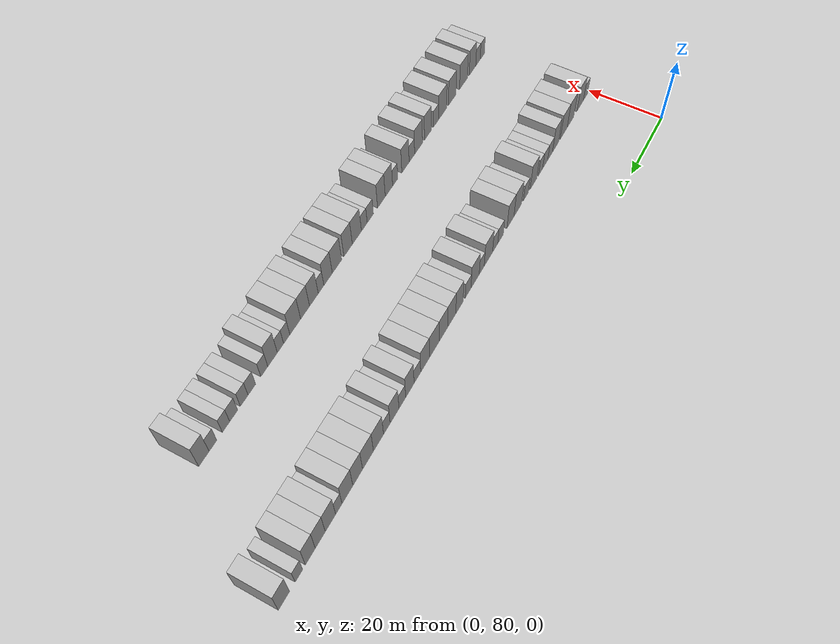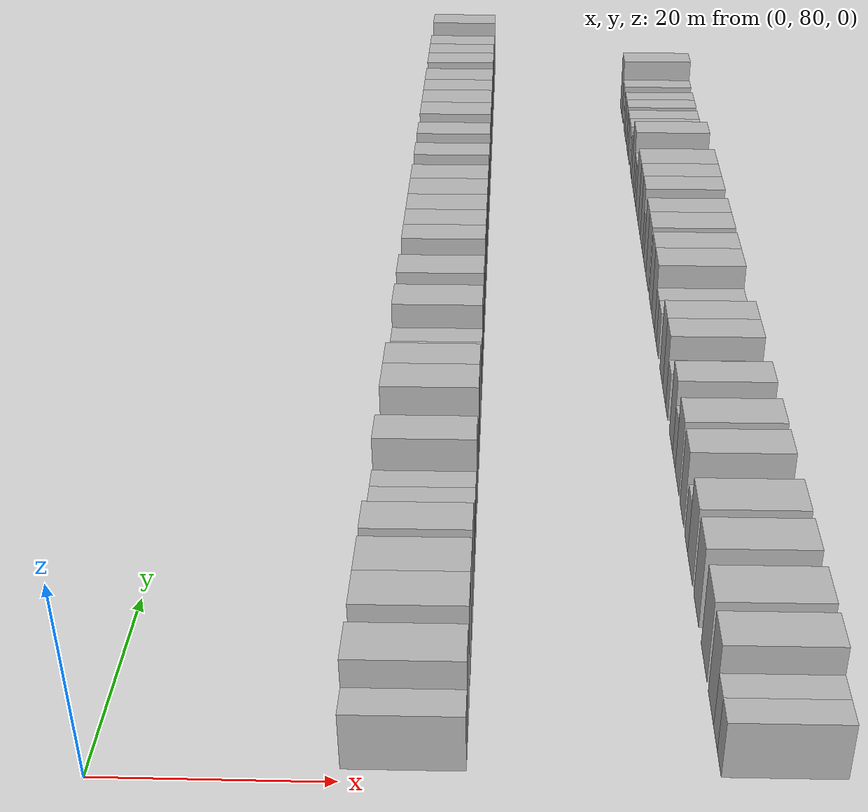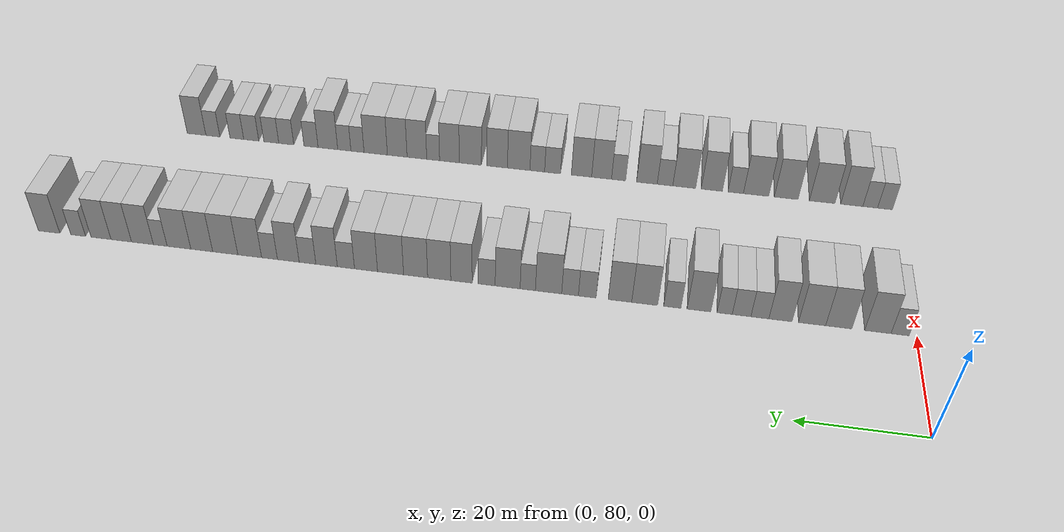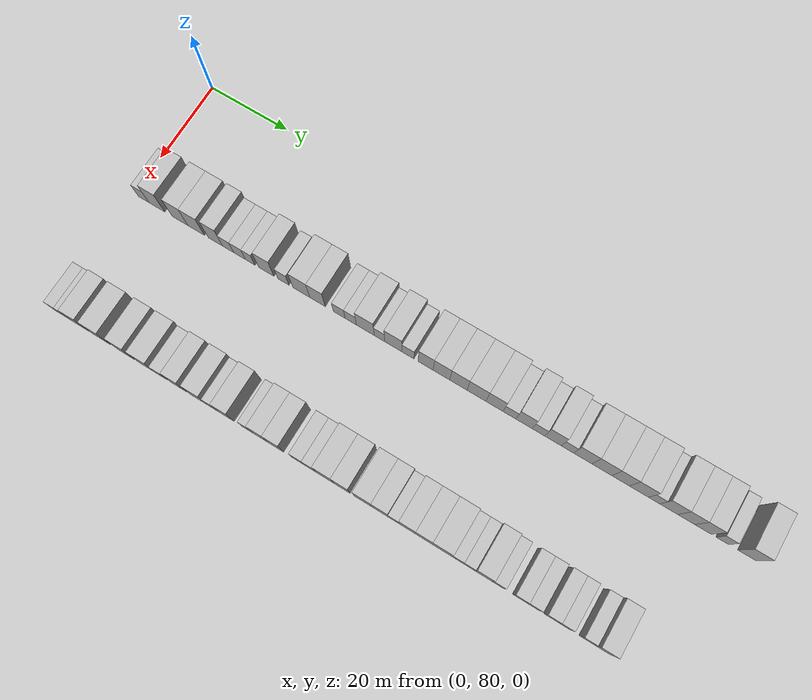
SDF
<sdf version="1.6">
 <world name="default">
  <model name="building_128">
   <static>1</static>
   <pose>25.0000 82.6388 0 0.000000 0.000000 0.000000</pose>
   <link name="link">
    <pose>0 0 3.00 0 0 0</pose>
    <collision name="collision"><geometry><box><size>10.0000 2.8003 6.0000</size></box></geometry></collision>
    <visual name="visual">
     <cast_shadows>0</cast_shadows>
     <geometry><box><size>10.0000 2.8003 6.0000</size></box></geometry>
     <material>
      <script>
       <uri>model://HANNAS_wall/materials/scripts</uri>
       <uri>model://HANNAS_wall/materials/textures</uri>
       <name>vrc/HANNAS_wall</name>
      </script>
     </material>
    </visual>
   </link>
  </model>
  <model name="building_129">
   <static>1</static>
   <pose>25.0000 86.0911 0 0.000000 0.000000 0.000000</pose>
   <link name="link">
    <pose>0 0 4.50 0 0 0</pose>
    <collision name="collision"><geometry><box><size>10.0000 4.1041 9.0000</size></box></geometry></collision>
    <visual name="visual">
     <cast_shadows>0</cast_shadows>
     <geometry><box><size>10.0000 4.1041 9.0000</size></box></geometry>
     <material>
      <script>
       <uri>model://HANNAS_wall/materials/scripts</uri>
       <uri>model://HANNAS_wall/materials/textures</uri>
       <name>vrc/HANNAS_wall</name>
      </script>
     </material>
    </visual>
   </link>
  </model>
  <model name="building_130">
   <static>1</static>
   <pose>25.0000 92.2010 0 0.000000 0.000000 0.000000</pose>
   <link name="link">
    <pose>0 0 4.50 0 0 0</pose>
    <collision name="collision"><geometry><box><size>10.0000 4.1157 9.0000</size></box></geometry></collision>
    <visual name="visual">
     <cast_shadows>0</cast_shadows>
     <geometry><box><size>10.0000 4.1157 9.0000</size></box></geometry>
     <material>
      <script>
       <uri>model://HANNAS_wall/materials/scripts</uri>
       <uri>model://HANNAS_wall/materials/textures</uri>
       <name>vrc/HANNAS_wall</name>
      </script>
     </material>
    </visual>
   </link>
  </model>
  <model name="building_131">
   <static>1</static>
   <pose>25.0000 96.4021 0 0.000000 0.000000 0.000000</pose>
   <link name="link">
    <pose>0 0 4.50 0 0 0</pose>
    <collision name="collision"><geometry><box><size>10.0000 4.2865 9.0000</size></box></geometry></collision>
    <visual name="visual">
     <cast_shadows>0</cast_shadows>
     <geometry><box><size>10.0000 4.2865 9.0000</size></box></geometry>
     <material>
      <script>
       <uri>model://HANNAS_wall/materials/scripts</uri>
       <uri>model://HANNAS_wall/materials/textures</uri>
       <name>vrc/HANNAS_wall</name>
      </script>
     </material>
    </visual>
   </link>
  </model>
  <model name="building_132">
   <static>1</static>
   <pose>25.0000 101.3925 0 0.000000 0.000000 0.000000</pose>
   <link name="link">
    <pose>0 0 4.50 0 0 0</pose>
    <collision name="collision"><geometry><box><size>10.0000 3.6942 9.0000</size></box></geometry></collision>
    <visual name="visual">
     <cast_shadows>0</cast_shadows>
     <geometry><box><size>10.0000 3.6942 9.0000</size></box></geometry>
     <material>
      <script>
       <uri>model://HANNAS_wall/materials/scripts</uri>
       <uri>model://HANNAS_wall/materials/textures</uri>
       <name>vrc/HANNAS_wall</name>
      </script>
     </material>
    </visual>
   </link>
  </model>
  <model name="building_133">
   <static>1</static>
   <pose>25.0000 104.6699 0 0.000000 0.000000 0.000000</pose>
   <link name="link">
    <pose>0 0 3.00 0 0 0</pose>
    <collision name="collision"><geometry><box><size>10.0000 2.8606 6.0000</size></box></geometry></collision>
    <visual name="visual">
     <cast_shadows>0</cast_shadows>
     <geometry><box><size>10.0000 2.8606 6.0000</size></box></geometry>
     <material>
      <script>
       <uri>model://HANNAS_wall/materials/scripts</uri>
       <uri>model://HANNAS_wall/materials/textures</uri>
       <name>vrc/HANNAS_wall</name>
      </script>
     </material>
    </visual>
   </link>
  </model>
  <model name="building_134">
   <static>1</static>
   <pose>25.0000 107.5915 0 0.000000 0.000000 0.000000</pose>
   <link name="link">
    <pose>0 0 3.00 0 0 0</pose>
    <collision name="collision"><geometry><box><size>10.0000 2.9827 6.0000</size></box></geometry></collision>
    <visual name="visual">
     <cast_shadows>0</cast_shadows>
     <geometry><box><size>10.0000 2.9827 6.0000</size></box></geometry>
     <material>
      <script>
       <uri>model://HANNAS_wall/materials/scripts</uri>
       <uri>model://HANNAS_wall/materials/textures</uri>
       <name>vrc/HANNAS_wall</name>
      </script>
     </material>
    </visual>
   </link>
  </model>
  <model name="building_135">
   <static>1</static>
   <pose>25.0000 110.3005 0 0.000000 0.000000 0.000000</pose>
   <link name="link">
    <pose>0 0 3.00 0 0 0</pose>
    <collision name="collision"><geometry><box><size>10.0000 2.4353 6.0000</size></box></geometry></collision>
    <visual name="visual">
     <cast_shadows>0</cast_shadows>
     <geometry><box><size>10.0000 2.4353 6.0000</size></box></geometry>
     <material>
      <script>
       <uri>model://HANNAS_wall/materials/scripts</uri>
       <uri>model://HANNAS_wall/materials/textures</uri>
       <name>vrc/HANNAS_wall</name>
      </script>
     </material>
    </visual>
   </link>
  </model>
  <model name="building_136">
   <static>1</static>
   <pose>25.0000 114.4313 0 0.000000 0.000000 0.000000</pose>
   <link name="link">
    <pose>0 0 4.50 0 0 0</pose>
    <collision name="collision"><geometry><box><size>10.0000 3.8262 9.0000</size></box></geometry></collision>
    <visual name="visual">
     <cast_shadows>0</cast_shadows>
     <geometry><box><size>10.0000 3.8262 9.0000</size></box></geometry>
     <material>
      <script>
       <uri>model://HANNAS_wall/materials/scripts</uri>
       <uri>model://HANNAS_wall/materials/textures</uri>
       <name>vrc/HANNAS_wall</name>
      </script>
     </material>
    </visual>
   </link>
  </model>
  <model name="building_137">
   <static>1</static>
   <pose>25.0000 118.7353 0 0.000000 0.000000 0.000000</pose>
   <link name="link">
    <pose>0 0 3.00 0 0 0</pose>
    <collision name="collision"><geometry><box><size>10.0000 2.7820 6.0000</size></box></geometry></collision>
    <visual name="visual">
     <cast_shadows>0</cast_shadows>
     <geometry><box><size>10.0000 2.7820 6.0000</size></box></geometry>
     <material>
      <script>
       <uri>model://HANNAS_wall/materials/scripts</uri>
       <uri>model://HANNAS_wall/materials/textures</uri>
       <name>vrc/HANNAS_wall</name>
      </script>
     </material>
    </visual>
   </link>
  </model>
  <model name="building_138">
   <static>1</static>
   <pose>25.0000 123.2450 0 0.000000 0.000000 0.000000</pose>
   <link name="link">
    <pose>0 0 4.50 0 0 0</pose>
    <collision name="collision"><geometry><box><size>10.0000 4.2373 9.0000</size></box></geometry></collision>
    <visual name="visual">
     <cast_shadows>0</cast_shadows>
     <geometry><box><size>10.0000 4.2373 9.0000</size></box></geometry>
     <material>
      <script>
       <uri>model://HANNAS_wall/materials/scripts</uri>
       <uri>model://HANNAS_wall/materials/textures</uri>
       <name>vrc/HANNAS_wall</name>
      </script>
     </material>
    </visual>
   </link>
  </model>
  <model name="building_139">
   <static>1</static>
   <pose>25.0000 127.2815 0 0.000000 0.000000 0.000000</pose>
   <link name="link">
    <pose>0 0 4.50 0 0 0</pose>
    <collision name="collision"><geometry><box><size>10.0000 3.8356 9.0000</size></box></geometry></collision>
    <visual name="visual">
     <cast_shadows>0</cast_shadows>
     <geometry><box><size>10.0000 3.8356 9.0000</size></box></geometry>
     <material>
      <script>
       <uri>model://HANNAS_wall/materials/scripts</uri>
       <uri>model://HANNAS_wall/materials/textures</uri>
       <name>vrc/HANNAS_wall</name>
      </script>
     </material>
    </visual>
   </link>
  </model>
  <model name="building_140">
   <static>1</static>
   <pose>25.0000 132.6607 0 0.000000 0.000000 0.000000</pose>
   <link name="link">
    <pose>0 0 3.00 0 0 0</pose>
    <collision name="collision"><geometry><box><size>10.0000 2.9227 6.0000</size></box></geometry></collision>
    <visual name="visual">
     <cast_shadows>0</cast_shadows>
     <geometry><box><size>10.0000 2.9227 6.0000</size></box></geometry>
     <material>
      <script>
       <uri>model://HANNAS_wall/materials/scripts</uri>
       <uri>model://HANNAS_wall/materials/textures</uri>
       <name>vrc/HANNAS_wall</name>
      </script>
     </material>
    </visual>
   </link>
  </model>
  <model name="building_141">
   <static>1</static>
   <pose>25.0000 135.5063 0 0.000000 0.000000 0.000000</pose>
   <link name="link">
    <pose>0 0 3.00 0 0 0</pose>
    <collision name="collision"><geometry><box><size>10.0000 2.7686 6.0000</size></box></geometry></collision>
    <visual name="visual">
     <cast_shadows>0</cast_shadows>
     <geometry><box><size>10.0000 2.7686 6.0000</size></box></geometry>
     <material>
      <script>
       <uri>model://HANNAS_wall/materials/scripts</uri>
       <uri>model://HANNAS_wall/materials/textures</uri>
       <name>vrc/HANNAS_wall</name>
      </script>
     </material>
    </visual>
   </link>
  </model>
  <model name="building_142">
   <static>1</static>
   <pose>25.0000 139.0740 0 0.000000 0.000000 0.000000</pose>
   <link name="link">
    <pose>0 0 4.50 0 0 0</pose>
    <collision name="collision"><geometry><box><size>10.0000 4.3667 9.0000</size></box></geometry></collision>
    <visual name="visual">
     <cast_shadows>0</cast_shadows>
     <geometry><box><size>10.0000 4.3667 9.0000</size></box></geometry>
     <material>
      <script>
       <uri>model://HANNAS_wall/materials/scripts</uri>
       <uri>model://HANNAS_wall/materials/textures</uri>
       <name>vrc/HANNAS_wall</name>
      </script>
     </material>
    </visual>
   </link>
  </model>
  <model name="building_143">
   <static>1</static>
   <pose>25.0000 142.5324 0 0.000000 0.000000 0.000000</pose>
   <link name="link">
    <pose>0 0 3.00 0 0 0</pose>
    <collision name="collision"><geometry><box><size>10.0000 2.5501 6.0000</size></box></geometry></collision>
    <visual name="visual">
     <cast_shadows>0</cast_shadows>
     <geometry><box><size>10.0000 2.5501 6.0000</size></box></geometry>
     <material>
      <script>
       <uri>model://HANNAS_wall/materials/scripts</uri>
       <uri>model://HANNAS_wall/materials/textures</uri>
       <name>vrc/HANNAS_wall</name>
      </script>
     </material>
    </visual>
   </link>
  </model>
  <model name="building_144">
   <static>1</static>
   <pose>25.0000 145.9005 0 0.000000 0.000000 0.000000</pose>
   <link name="link">
    <pose>0 0 4.50 0 0 0</pose>
    <collision name="collision"><geometry><box><size>10.0000 4.1861 9.0000</size></box></geometry></collision>
    <visual name="visual">
     <cast_shadows>0</cast_shadows>
     <geometry><box><size>10.0000 4.1861 9.0000</size></box></geometry>
     <material>
      <script>
       <uri>model://HANNAS_wall/materials/scripts</uri>
       <uri>model://HANNAS_wall/materials/textures</uri>
       <name>vrc/HANNAS_wall</name>
      </script>
     </material>
    </visual>
   </link>
  </model>
  <model name="building_145">
   <static>1</static>
   <pose>25.0000 149.4342 0 0.000000 0.000000 0.000000</pose>
   <link name="link">
    <pose>0 0 3.00 0 0 0</pose>
    <collision name="collision"><geometry><box><size>10.0000 2.8813 6.0000</size></box></geometry></collision>
    <visual name="visual">
     <cast_shadows>0</cast_shadows>
     <geometry><box><size>10.0000 2.8813 6.0000</size></box></geometry>
     <material>
      <script>
       <uri>model://HANNAS_wall/materials/scripts</uri>
       <uri>model://HANNAS_wall/materials/textures</uri>
       <name>vrc/HANNAS_wall</name>
      </script>
     </material>
    </visual>
   </link>
  </model>
  <model name="building_146">
   <static>1</static>
   <pose>25.0000 153.6751 0 0.000000 0.000000 0.000000</pose>
   <link name="link">
    <pose>0 0 4.50 0 0 0</pose>
    <collision name="collision"><geometry><box><size>10.0000 3.6006 9.0000</size></box></geometry></collision>
    <visual name="visual">
     <cast_shadows>0</cast_shadows>
     <geometry><box><size>10.0000 3.6006 9.0000</size></box></geometry>
     <material>
      <script>
       <uri>model://HANNAS_wall/materials/scripts</uri>
       <uri>model://HANNAS_wall/materials/textures</uri>
       <name>vrc/HANNAS_wall</name>
      </script>
     </material>
    </visual>
   </link>
  </model>
  <model name="building_147">
   <static>1</static>
   <pose>25.0000 157.4450 0 0.000000 0.000000 0.000000</pose>
   <link name="link">
    <pose>0 0 4.50 0 0 0</pose>
    <collision name="collision"><geometry><box><size>10.0000 3.9392 9.0000</size></box></geometry></collision>
    <visual name="visual">
     <cast_shadows>0</cast_shadows>
     <geometry><box><size>10.0000 3.9392 9.0000</size></box></geometry>
     <material>
      <script>
       <uri>model://HANNAS_wall/materials/scripts</uri>
       <uri>model://HANNAS_wall/materials/textures</uri>
       <name>vrc/HANNAS_wall</name>
      </script>
     </material>
    </visual>
   </link>
  </model>
  <model name="building_148">
   <static>1</static>
   <pose>25.0000 161.4717 0 0.000000 0.000000 0.000000</pose>
   <link name="link">
    <pose>0 0 4.50 0 0 0</pose>
    <collision name="collision"><geometry><box><size>10.0000 4.1141 9.0000</size></box></geometry></collision>
    <visual name="visual">
     <cast_shadows>0</cast_shadows>
     <geometry><box><size>10.0000 4.1141 9.0000</size></box></geometry>
     <material>
      <script>
       <uri>model://HANNAS_wall/materials/scripts</uri>
       <uri>model://HANNAS_wall/materials/textures</uri>
       <name>vrc/HANNAS_wall</name>
      </script>
     </material>
    </visual>
   </link>
  </model>
  <model name="building_149">
   <static>1</static>
   <pose>25.0000 165.7676 0 0.000000 0.000000 0.000000</pose>
   <link name="link">
    <pose>0 0 4.50 0 0 0</pose>
    <collision name="collision"><geometry><box><size>10.0000 4.4777 9.0000</size></box></geometry></collision>
    <visual name="visual">
     <cast_shadows>0</cast_shadows>
     <geometry><box><size>10.0000 4.4777 9.0000</size></box></geometry>
     <material>
      <script>
       <uri>model://HANNAS_wall/materials/scripts</uri>
       <uri>model://HANNAS_wall/materials/textures</uri>
       <name>vrc/HANNAS_wall</name>
      </script>
     </material>
    </visual>
   </link>
  </model>
  <model name="building_150">
   <static>1</static>
   <pose>25.0000 169.9955 0 0.000000 0.000000 0.000000</pose>
   <link name="link">
    <pose>0 0 4.50 0 0 0</pose>
    <collision name="collision"><geometry><box><size>10.0000 3.9782 9.0000</size></box></geometry></collision>
    <visual name="visual">
     <cast_shadows>0</cast_shadows>
     <geometry><box><size>10.0000 3.9782 9.0000</size></box></geometry>
     <material>
      <script>
       <uri>model://HANNAS_wall/materials/scripts</uri>
       <uri>model://HANNAS_wall/materials/textures</uri>
       <name>vrc/HANNAS_wall</name>
      </script>
     </material>
    </visual>
   </link>
  </model>
  <model name="building_151">
   <static>1</static>
   <pose>25.0000 173.4756 0 0.000000 0.000000 0.000000</pose>
   <link name="link">
    <pose>0 0 3.00 0 0 0</pose>
    <collision name="collision"><geometry><box><size>10.0000 2.9819 6.0000</size></box></geometry></collision>
    <visual name="visual">
     <cast_shadows>0</cast_shadows>
     <geometry><box><size>10.0000 2.9819 6.0000</size></box></geometry>
     <material>
      <script>
       <uri>model://HANNAS_wall/materials/scripts</uri>
       <uri>model://HANNAS_wall/materials/textures</uri>
       <name>vrc/HANNAS_wall</name>
      </script>
     </material>
    </visual>
   </link>
  </model>
  <model name="building_152">
   <static>1</static>
   <pose>25.0000 176.8359 0 0.000000 0.000000 0.000000</pose>
   <link name="link">
    <pose>0 0 4.50 0 0 0</pose>
    <collision name="collision"><geometry><box><size>10.0000 3.7387 9.0000</size></box></geometry></collision>
    <visual name="visual">
     <cast_shadows>0</cast_shadows>
     <geometry><box><size>10.0000 3.7387 9.0000</size></box></geometry>
     <material>
      <script>
       <uri>model://HANNAS_wall/materials/scripts</uri>
       <uri>model://HANNAS_wall/materials/textures</uri>
       <name>vrc/HANNAS_wall</name>
      </script>
     </material>
    </visual>
   </link>
  </model>
  <model name="building_153">
   <static>1</static>
   <pose>25.0000 180.1672 0 0.000000 0.000000 0.000000</pose>
   <link name="link">
    <pose>0 0 3.00 0 0 0</pose>
    <collision name="collision"><geometry><box><size>10.0000 2.9238 6.0000</size></box></geometry></collision>
    <visual name="visual">
     <cast_shadows>0</cast_shadows>
     <geometry><box><size>10.0000 2.9238 6.0000</size></box></geometry>
     <material>
      <script>
       <uri>model://HANNAS_wall/materials/scripts</uri>
       <uri>model://HANNAS_wall/materials/textures</uri>
       <name>vrc/HANNAS_wall</name>
      </script>
     </material>
    </visual>
   </link>
  </model>
  <model name="building_154">
   <static>1</static>
   <pose>25.0000 183.5344 0 0.000000 0.000000 0.000000</pose>
   <link name="link">
    <pose>0 0 4.50 0 0 0</pose>
    <collision name="collision"><geometry><box><size>10.0000 3.8106 9.0000</size></box></geometry></collision>
    <visual name="visual">
     <cast_shadows>0</cast_shadows>
     <geometry><box><size>10.0000 3.8106 9.0000</size></box></geometry>
     <material>
      <script>
       <uri>model://HANNAS_wall/materials/scripts</uri>
       <uri>model://HANNAS_wall/materials/textures</uri>
       <name>vrc/HANNAS_wall</name>
      </script>
     </material>
    </visual>
   </link>
  </model>
  <model name="building_155">
   <static>1</static>
   <pose>25.0000 186.8343 0 0.000000 0.000000 0.000000</pose>
   <link name="link">
    <pose>0 0 3.00 0 0 0</pose>
    <collision name="collision"><geometry><box><size>10.0000 2.7893 6.0000</size></box></geometry></collision>
    <visual name="visual">
     <cast_shadows>0</cast_shadows>
     <geometry><box><size>10.0000 2.7893 6.0000</size></box></geometry>
     <material>
      <script>
       <uri>model://HANNAS_wall/materials/scripts</uri>
       <uri>model://HANNAS_wall/materials/textures</uri>
       <name>vrc/HANNAS_wall</name>
      </script>
     </material>
    </visual>
   </link>
  </model>
  <model name="building_156">
   <static>1</static>
   <pose>25.0000 190.3401 0 0.000000 0.000000 0.000000</pose>
   <link name="link">
    <pose>0 0 4.50 0 0 0</pose>
    <collision name="collision"><geometry><box><size>10.0000 4.2223 9.0000</size></box></geometry></collision>
    <visual name="visual">
     <cast_shadows>0</cast_shadows>
     <geometry><box><size>10.0000 4.2223 9.0000</size></box></geometry>
     <material>
      <script>
       <uri>model://HANNAS_wall/materials/scripts</uri>
       <uri>model://HANNAS_wall/materials/textures</uri>
       <name>vrc/HANNAS_wall</name>
      </script>
     </material>
    </visual>
   </link>
  </model>
  <model name="building_157">
   <static>1</static>
   <pose>25.0000 194.6820 0 0.000000 0.000000 0.000000</pose>
   <link name="link">
    <pose>0 0 4.50 0 0 0</pose>
    <collision name="collision"><geometry><box><size>10.0000 4.4613 9.0000</size></box></geometry></collision>
    <visual name="visual">
     <cast_shadows>0</cast_shadows>
     <geometry><box><size>10.0000 4.4613 9.0000</size></box></geometry>
     <material>
      <script>
       <uri>model://HANNAS_wall/materials/scripts</uri>
       <uri>model://HANNAS_wall/materials/textures</uri>
       <name>vrc/HANNAS_wall</name>
      </script>
     </material>
    </visual>
   </link>
  </model>
  <model name="building_158">
   <static>1</static>
   <pose>25.0000 198.8707 0 0.000000 0.000000 0.000000</pose>
   <link name="link">
    <pose>0 0 4.50 0 0 0</pose>
    <collision name="collision"><geometry><box><size>10.0000 3.9162 9.0000</size></box></geometry></collision>
    <visual name="visual">
     <cast_shadows>0</cast_shadows>
     <geometry><box><size>10.0000 3.9162 9.0000</size></box></geometry>
     <material>
      <script>
       <uri>model://HANNAS_wall/materials/scripts</uri>
       <uri>model://HANNAS_wall/materials/textures</uri>
       <name>vrc/HANNAS_wall</name>
      </script>
     </material>
    </visual>
   </link>
  </model>
  <model name="building_159">
   <static>1</static>
   <pose>25.0000 202.9590 0 0.000000 0.000000 0.000000</pose>
   <link name="link">
    <pose>0 0 4.50 0 0 0</pose>
    <collision name="collision"><geometry><box><size>10.0000 4.2603 9.0000</size></box></geometry></collision>
    <visual name="visual">
     <cast_shadows>0</cast_shadows>
     <geometry><box><size>10.0000 4.2603 9.0000</size></box></geometry>
     <material>
      <script>
       <uri>model://HANNAS_wall/materials/scripts</uri>
       <uri>model://HANNAS_wall/materials/textures</uri>
       <name>vrc/HANNAS_wall</name>
      </script>
     </material>
    </visual>
   </link>
  </model>
  <model name="building_160">
   <static>1</static>
   <pose>25.0000 206.3321 0 0.000000 0.000000 0.000000</pose>
   <link name="link">
    <pose>0 0 3.00 0 0 0</pose>
    <collision name="collision"><geometry><box><size>10.0000 2.4860 6.0000</size></box></geometry></collision>
    <visual name="visual">
     <cast_shadows>0</cast_shadows>
     <geometry><box><size>10.0000 2.4860 6.0000</size></box></geometry>
     <material>
      <script>
       <uri>model://HANNAS_wall/materials/scripts</uri>
       <uri>model://HANNAS_wall/materials/textures</uri>
       <name>vrc/HANNAS_wall</name>
      </script>
     </material>
    </visual>
   </link>
  </model>
  <model name="building_161">
   <static>1</static>
   <pose>25.0000 209.5565 0 0.000000 0.000000 0.000000</pose>
   <link name="link">
    <pose>0 0 4.50 0 0 0</pose>
    <collision name="collision"><geometry><box><size>10.0000 3.9627 9.0000</size></box></geometry></collision>
    <visual name="visual">
     <cast_shadows>0</cast_shadows>
     <geometry><box><size>10.0000 3.9627 9.0000</size></box></geometry>
     <material>
      <script>
       <uri>model://HANNAS_wall/materials/scripts</uri>
       <uri>model://HANNAS_wall/materials/textures</uri>
       <name>vrc/HANNAS_wall</name>
      </script>
     </material>
    </visual>
   </link>
  </model>
  <model name="building_162">
   <static>1</static>
   <pose>25.0000 213.4052 0 0.000000 0.000000 0.000000</pose>
   <link name="link">
    <pose>0 0 4.50 0 0 0</pose>
    <collision name="collision"><geometry><box><size>10.0000 3.7347 9.0000</size></box></geometry></collision>
    <visual name="visual">
     <cast_shadows>0</cast_shadows>
     <geometry><box><size>10.0000 3.7347 9.0000</size></box></geometry>
     <material>
      <script>
       <uri>model://HANNAS_wall/materials/scripts</uri>
       <uri>model://HANNAS_wall/materials/textures</uri>
       <name>vrc/HANNAS_wall</name>
      </script>
     </material>
    </visual>
   </link>
  </model>
  <model name="building_163">
   <static>1</static>
   <pose>25.0000 217.1022 0 0.000000 0.000000 0.000000</pose>
   <link name="link">
    <pose>0 0 4.50 0 0 0</pose>
    <collision name="collision"><geometry><box><size>10.0000 3.6593 9.0000</size></box></geometry></collision>
    <visual name="visual">
     <cast_shadows>0</cast_shadows>
     <geometry><box><size>10.0000 3.6593 9.0000</size></box></geometry>
     <material>
      <script>
       <uri>model://HANNAS_wall/materials/scripts</uri>
       <uri>model://HANNAS_wall/materials/textures</uri>
       <name>vrc/HANNAS_wall</name>
      </script>
     </material>
    </visual>
   </link>
  </model>
  <model name="building_164">
   <static>1</static>
   <pose>25.0000 221.2913 0 0.000000 0.000000 0.000000</pose>
   <link name="link">
    <pose>0 0 3.00 0 0 0</pose>
    <collision name="collision"><geometry><box><size>10.0000 2.7189 6.0000</size></box></geometry></collision>
    <visual name="visual">
     <cast_shadows>0</cast_shadows>
     <geometry><box><size>10.0000 2.7189 6.0000</size></box></geometry>
     <material>
      <script>
       <uri>model://HANNAS_wall/materials/scripts</uri>
       <uri>model://HANNAS_wall/materials/textures</uri>
       <name>vrc/HANNAS_wall</name>
      </script>
     </material>
    </visual>
   </link>
  </model>
  <model name="building_165">
   <static>1</static>
   <pose>25.0000 226.6301 0 0.000000 0.000000 0.000000</pose>
   <link name="link">
    <pose>0 0 4.50 0 0 0</pose>
    <collision name="collision"><geometry><box><size>10.0000 3.9588 9.0000</size></box></geometry></collision>
    <visual name="visual">
     <cast_shadows>0</cast_shadows>
     <geometry><box><size>10.0000 3.9588 9.0000</size></box></geometry>
     <material>
      <script>
       <uri>model://HANNAS_wall/materials/scripts</uri>
       <uri>model://HANNAS_wall/materials/textures</uri>
       <name>vrc/HANNAS_wall</name>
      </script>
     </material>
    </visual>
   </link>
  </model>
  <model name="building_357">
   <static>1</static>
   <pose>55.0000 82.3574 0 0.000000 0.000000 0.000000</pose>
   <link name="link">
    <pose>0 0 3.00 0 0 0</pose>
    <collision name="collision"><geometry><box><size>10.0000 2.5572 6.0000</size></box></geometry></collision>
    <visual name="visual">
     <cast_shadows>0</cast_shadows>
     <geometry><box><size>10.0000 2.5572 6.0000</size></box></geometry>
     <material>
      <script>
       <uri>model://HANNAS_wall/materials/scripts</uri>
       <uri>model://HANNAS_wall/materials/textures</uri>
       <name>vrc/HANNAS_wall</name>
      </script>
     </material>
    </visual>
   </link>
  </model>
  <model name="building_358">
   <static>1</static>
   <pose>55.0000 84.9187 0 0.000000 0.000000 0.000000</pose>
   <link name="link">
    <pose>0 0 3.00 0 0 0</pose>
    <collision name="collision"><geometry><box><size>10.0000 2.5655 6.0000</size></box></geometry></collision>
    <visual name="visual">
     <cast_shadows>0</cast_shadows>
     <geometry><box><size>10.0000 2.5655 6.0000</size></box></geometry>
     <material>
      <script>
       <uri>model://HANNAS_wall/materials/scripts</uri>
       <uri>model://HANNAS_wall/materials/textures</uri>
       <name>vrc/HANNAS_wall</name>
      </script>
     </material>
    </visual>
   </link>
  </model>
  <model name="building_359">
   <static>1</static>
   <pose>55.0000 88.1285 0 0.000000 0.000000 0.000000</pose>
   <link name="link">
    <pose>0 0 4.50 0 0 0</pose>
    <collision name="collision"><geometry><box><size>10.0000 3.8541 9.0000</size></box></geometry></collision>
    <visual name="visual">
     <cast_shadows>0</cast_shadows>
     <geometry><box><size>10.0000 3.8541 9.0000</size></box></geometry>
     <material>
      <script>
       <uri>model://HANNAS_wall/materials/scripts</uri>
       <uri>model://HANNAS_wall/materials/textures</uri>
       <name>vrc/HANNAS_wall</name>
      </script>
     </material>
    </visual>
   </link>
  </model>
  <model name="building_360">
   <static>1</static>
   <pose>55.0000 93.2968 0 0.000000 0.000000 0.000000</pose>
   <link name="link">
    <pose>0 0 4.50 0 0 0</pose>
    <collision name="collision"><geometry><box><size>10.0000 4.4826 9.0000</size></box></geometry></collision>
    <visual name="visual">
     <cast_shadows>0</cast_shadows>
     <geometry><box><size>10.0000 4.4826 9.0000</size></box></geometry>
     <material>
      <script>
       <uri>model://HANNAS_wall/materials/scripts</uri>
       <uri>model://HANNAS_wall/materials/textures</uri>
       <name>vrc/HANNAS_wall</name>
      </script>
     </material>
    </visual>
   </link>
  </model>
  <model name="building_361">
   <static>1</static>
   <pose>55.0000 99.6354 0 0.000000 0.000000 0.000000</pose>
   <link name="link">
    <pose>0 0 4.50 0 0 0</pose>
    <collision name="collision"><geometry><box><size>10.0000 4.1946 9.0000</size></box></geometry></collision>
    <visual name="visual">
     <cast_shadows>0</cast_shadows>
     <geometry><box><size>10.0000 4.1946 9.0000</size></box></geometry>
     <material>
      <script>
       <uri>model://HANNAS_wall/materials/scripts</uri>
       <uri>model://HANNAS_wall/materials/textures</uri>
       <name>vrc/HANNAS_wall</name>
      </script>
     </material>
    </visual>
   </link>
  </model>
  <model name="building_362">
   <static>1</static>
   <pose>55.0000 104.9770 0 0.000000 0.000000 0.000000</pose>
   <link name="link">
    <pose>0 0 4.50 0 0 0</pose>
    <collision name="collision"><geometry><box><size>10.0000 4.4886 9.0000</size></box></geometry></collision>
    <visual name="visual">
     <cast_shadows>0</cast_shadows>
     <geometry><box><size>10.0000 4.4886 9.0000</size></box></geometry>
     <material>
      <script>
       <uri>model://HANNAS_wall/materials/scripts</uri>
       <uri>model://HANNAS_wall/materials/textures</uri>
       <name>vrc/HANNAS_wall</name>
      </script>
     </material>
    </visual>
   </link>
  </model>
  <model name="building_363">
   <static>1</static>
   <pose>55.0000 108.5970 0 0.000000 0.000000 0.000000</pose>
   <link name="link">
    <pose>0 0 3.00 0 0 0</pose>
    <collision name="collision"><geometry><box><size>10.0000 2.7515 6.0000</size></box></geometry></collision>
    <visual name="visual">
     <cast_shadows>0</cast_shadows>
     <geometry><box><size>10.0000 2.7515 6.0000</size></box></geometry>
     <material>
      <script>
       <uri>model://HANNAS_wall/materials/scripts</uri>
       <uri>model://HANNAS_wall/materials/textures</uri>
       <name>vrc/HANNAS_wall</name>
      </script>
     </material>
    </visual>
   </link>
  </model>
  <model name="building_364">
   <static>1</static>
   <pose>55.0000 112.8719 0 0.000000 0.000000 0.000000</pose>
   <link name="link">
    <pose>0 0 4.50 0 0 0</pose>
    <collision name="collision"><geometry><box><size>10.0000 3.7982 9.0000</size></box></geometry></collision>
    <visual name="visual">
     <cast_shadows>0</cast_shadows>
     <geometry><box><size>10.0000 3.7982 9.0000</size></box></geometry>
     <material>
      <script>
       <uri>model://HANNAS_wall/materials/scripts</uri>
       <uri>model://HANNAS_wall/materials/textures</uri>
       <name>vrc/HANNAS_wall</name>
      </script>
     </material>
    </visual>
   </link>
  </model>
  <model name="building_365">
   <static>1</static>
   <pose>55.0000 117.8291 0 0.000000 0.000000 0.000000</pose>
   <link name="link">
    <pose>0 0 4.50 0 0 0</pose>
    <collision name="collision"><geometry><box><size>10.0000 4.1161 9.0000</size></box></geometry></collision>
    <visual name="visual">
     <cast_shadows>0</cast_shadows>
     <geometry><box><size>10.0000 4.1161 9.0000</size></box></geometry>
     <material>
      <script>
       <uri>model://HANNAS_wall/materials/scripts</uri>
       <uri>model://HANNAS_wall/materials/textures</uri>
       <name>vrc/HANNAS_wall</name>
      </script>
     </material>
    </visual>
   </link>
  </model>
  <model name="building_366">
   <static>1</static>
   <pose>55.0000 121.3014 0 0.000000 0.000000 0.000000</pose>
   <link name="link">
    <pose>0 0 3.00 0 0 0</pose>
    <collision name="collision"><geometry><box><size>10.0000 2.8285 6.0000</size></box></geometry></collision>
    <visual name="visual">
     <cast_shadows>0</cast_shadows>
     <geometry><box><size>10.0000 2.8285 6.0000</size></box></geometry>
     <material>
      <script>
       <uri>model://HANNAS_wall/materials/scripts</uri>
       <uri>model://HANNAS_wall/materials/textures</uri>
       <name>vrc/HANNAS_wall</name>
      </script>
     </material>
    </visual>
   </link>
  </model>
  <model name="building_367">
   <static>1</static>
   <pose>55.0000 124.5850 0 0.000000 0.000000 0.000000</pose>
   <link name="link">
    <pose>0 0 4.50 0 0 0</pose>
    <collision name="collision"><geometry><box><size>10.0000 3.7387 9.0000</size></box></geometry></collision>
    <visual name="visual">
     <cast_shadows>0</cast_shadows>
     <geometry><box><size>10.0000 3.7387 9.0000</size></box></geometry>
     <material>
      <script>
       <uri>model://HANNAS_wall/materials/scripts</uri>
       <uri>model://HANNAS_wall/materials/textures</uri>
       <name>vrc/HANNAS_wall</name>
      </script>
     </material>
    </visual>
   </link>
  </model>
  <model name="building_368">
   <static>1</static>
   <pose>55.0000 129.7436 0 0.000000 0.000000 0.000000</pose>
   <link name="link">
    <pose>0 0 3.00 0 0 0</pose>
    <collision name="collision"><geometry><box><size>10.0000 2.5785 6.0000</size></box></geometry></collision>
    <visual name="visual">
     <cast_shadows>0</cast_shadows>
     <geometry><box><size>10.0000 2.5785 6.0000</size></box></geometry>
     <material>
      <script>
       <uri>model://HANNAS_wall/materials/scripts</uri>
       <uri>model://HANNAS_wall/materials/textures</uri>
       <name>vrc/HANNAS_wall</name>
      </script>
     </material>
    </visual>
   </link>
  </model>
  <model name="building_369">
   <static>1</static>
   <pose>55.0000 132.8541 0 0.000000 0.000000 0.000000</pose>
   <link name="link">
    <pose>0 0 4.50 0 0 0</pose>
    <collision name="collision"><geometry><box><size>10.0000 3.6426 9.0000</size></box></geometry></collision>
    <visual name="visual">
     <cast_shadows>0</cast_shadows>
     <geometry><box><size>10.0000 3.6426 9.0000</size></box></geometry>
     <material>
      <script>
       <uri>model://HANNAS_wall/materials/scripts</uri>
       <uri>model://HANNAS_wall/materials/textures</uri>
       <name>vrc/HANNAS_wall</name>
      </script>
     </material>
    </visual>
   </link>
  </model>
  <model name="building_370">
   <static>1</static>
   <pose>55.0000 136.5453 0 0.000000 0.000000 0.000000</pose>
   <link name="link">
    <pose>0 0 4.50 0 0 0</pose>
    <collision name="collision"><geometry><box><size>10.0000 3.7398 9.0000</size></box></geometry></collision>
    <visual name="visual">
     <cast_shadows>0</cast_shadows>
     <geometry><box><size>10.0000 3.7398 9.0000</size></box></geometry>
     <material>
      <script>
       <uri>model://HANNAS_wall/materials/scripts</uri>
       <uri>model://HANNAS_wall/materials/textures</uri>
       <name>vrc/HANNAS_wall</name>
      </script>
     </material>
    </visual>
   </link>
  </model>
  <model name="building_371">
   <static>1</static>
   <pose>55.0000 141.8850 0 0.000000 0.000000 0.000000</pose>
   <link name="link">
    <pose>0 0 3.00 0 0 0</pose>
    <collision name="collision"><geometry><box><size>10.0000 2.9395 6.0000</size></box></geometry></collision>
    <visual name="visual">
     <cast_shadows>0</cast_shadows>
     <geometry><box><size>10.0000 2.9395 6.0000</size></box></geometry>
     <material>
      <script>
       <uri>model://HANNAS_wall/materials/scripts</uri>
       <uri>model://HANNAS_wall/materials/textures</uri>
       <name>vrc/HANNAS_wall</name>
      </script>
     </material>
    </visual>
   </link>
  </model>
  <model name="building_372">
   <static>1</static>
   <pose>55.0000 144.7154 0 0.000000 0.000000 0.000000</pose>
   <link name="link">
    <pose>0 0 3.00 0 0 0</pose>
    <collision name="collision"><geometry><box><size>10.0000 2.7214 6.0000</size></box></geometry></collision>
    <visual name="visual">
     <cast_shadows>0</cast_shadows>
     <geometry><box><size>10.0000 2.7214 6.0000</size></box></geometry>
     <material>
      <script>
       <uri>model://HANNAS_wall/materials/scripts</uri>
       <uri>model://HANNAS_wall/materials/textures</uri>
       <name>vrc/HANNAS_wall</name>
      </script>
     </material>
    </visual>
   </link>
  </model>
  <model name="building_373">
   <static>1</static>
   <pose>55.0000 148.1812 0 0.000000 0.000000 0.000000</pose>
   <link name="link">
    <pose>0 0 4.50 0 0 0</pose>
    <collision name="collision"><geometry><box><size>10.0000 4.2102 9.0000</size></box></geometry></collision>
    <visual name="visual">
     <cast_shadows>0</cast_shadows>
     <geometry><box><size>10.0000 4.2102 9.0000</size></box></geometry>
     <material>
      <script>
       <uri>model://HANNAS_wall/materials/scripts</uri>
       <uri>model://HANNAS_wall/materials/textures</uri>
       <name>vrc/HANNAS_wall</name>
      </script>
     </material>
    </visual>
   </link>
  </model>
  <model name="building_374">
   <static>1</static>
   <pose>55.0000 152.2205 0 0.000000 0.000000 0.000000</pose>
   <link name="link">
    <pose>0 0 4.50 0 0 0</pose>
    <collision name="collision"><geometry><box><size>10.0000 3.8685 9.0000</size></box></geometry></collision>
    <visual name="visual">
     <cast_shadows>0</cast_shadows>
     <geometry><box><size>10.0000 3.8685 9.0000</size></box></geometry>
     <material>
      <script>
       <uri>model://HANNAS_wall/materials/scripts</uri>
       <uri>model://HANNAS_wall/materials/textures</uri>
       <name>vrc/HANNAS_wall</name>
      </script>
     </material>
    </visual>
   </link>
  </model>
  <model name="building_375">
   <static>1</static>
   <pose>55.0000 157.2411 0 0.000000 0.000000 0.000000</pose>
   <link name="link">
    <pose>0 0 4.50 0 0 0</pose>
    <collision name="collision"><geometry><box><size>10.0000 4.1727 9.0000</size></box></geometry></collision>
    <visual name="visual">
     <cast_shadows>0</cast_shadows>
     <geometry><box><size>10.0000 4.1727 9.0000</size></box></geometry>
     <material>
      <script>
       <uri>model://HANNAS_wall/materials/scripts</uri>
       <uri>model://HANNAS_wall/materials/textures</uri>
       <name>vrc/HANNAS_wall</name>
      </script>
     </material>
    </visual>
   </link>
  </model>
  <model name="building_376">
   <static>1</static>
   <pose>55.0000 161.1854 0 0.000000 0.000000 0.000000</pose>
   <link name="link">
    <pose>0 0 4.50 0 0 0</pose>
    <collision name="collision"><geometry><box><size>10.0000 3.7158 9.0000</size></box></geometry></collision>
    <visual name="visual">
     <cast_shadows>0</cast_shadows>
     <geometry><box><size>10.0000 3.7158 9.0000</size></box></geometry>
     <material>
      <script>
       <uri>model://HANNAS_wall/materials/scripts</uri>
       <uri>model://HANNAS_wall/materials/textures</uri>
       <name>vrc/HANNAS_wall</name>
      </script>
     </material>
    </visual>
   </link>
  </model>
  <model name="building_377">
   <static>1</static>
   <pose>55.0000 164.2686 0 0.000000 0.000000 0.000000</pose>
   <link name="link">
    <pose>0 0 3.00 0 0 0</pose>
    <collision name="collision"><geometry><box><size>10.0000 2.4507 6.0000</size></box></geometry></collision>
    <visual name="visual">
     <cast_shadows>0</cast_shadows>
     <geometry><box><size>10.0000 2.4507 6.0000</size></box></geometry>
     <material>
      <script>
       <uri>model://HANNAS_wall/materials/scripts</uri>
       <uri>model://HANNAS_wall/materials/textures</uri>
       <name>vrc/HANNAS_wall</name>
      </script>
     </material>
    </visual>
   </link>
  </model>
  <model name="building_378">
   <static>1</static>
   <pose>55.0000 167.3596 0 0.000000 0.000000 0.000000</pose>
   <link name="link">
    <pose>0 0 4.50 0 0 0</pose>
    <collision name="collision"><geometry><box><size>10.0000 3.7312 9.0000</size></box></geometry></collision>
    <visual name="visual">
     <cast_shadows>0</cast_shadows>
     <geometry><box><size>10.0000 3.7312 9.0000</size></box></geometry>
     <material>
      <script>
       <uri>model://HANNAS_wall/materials/scripts</uri>
       <uri>model://HANNAS_wall/materials/textures</uri>
       <name>vrc/HANNAS_wall</name>
      </script>
     </material>
    </visual>
   </link>
  </model>
  <model name="building_379">
   <static>1</static>
   <pose>55.0000 171.1071 0 0.000000 0.000000 0.000000</pose>
   <link name="link">
    <pose>0 0 4.50 0 0 0</pose>
    <collision name="collision"><geometry><box><size>10.0000 3.7638 9.0000</size></box></geometry></collision>
    <visual name="visual">
     <cast_shadows>0</cast_shadows>
     <geometry><box><size>10.0000 3.7638 9.0000</size></box></geometry>
     <material>
      <script>
       <uri>model://HANNAS_wall/materials/scripts</uri>
       <uri>model://HANNAS_wall/materials/textures</uri>
       <name>vrc/HANNAS_wall</name>
      </script>
     </material>
    </visual>
   </link>
  </model>
  <model name="building_380">
   <static>1</static>
   <pose>55.0000 175.2351 0 0.000000 0.000000 0.000000</pose>
   <link name="link">
    <pose>0 0 4.50 0 0 0</pose>
    <collision name="collision"><geometry><box><size>10.0000 4.4922 9.0000</size></box></geometry></collision>
    <visual name="visual">
     <cast_shadows>0</cast_shadows>
     <geometry><box><size>10.0000 4.4922 9.0000</size></box></geometry>
     <material>
      <script>
       <uri>model://HANNAS_wall/materials/scripts</uri>
       <uri>model://HANNAS_wall/materials/textures</uri>
       <name>vrc/HANNAS_wall</name>
      </script>
     </material>
    </visual>
   </link>
  </model>
  <model name="building_381">
   <static>1</static>
   <pose>55.0000 178.7448 0 0.000000 0.000000 0.000000</pose>
   <link name="link">
    <pose>0 0 3.00 0 0 0</pose>
    <collision name="collision"><geometry><box><size>10.0000 2.5270 6.0000</size></box></geometry></collision>
    <visual name="visual">
     <cast_shadows>0</cast_shadows>
     <geometry><box><size>10.0000 2.5270 6.0000</size></box></geometry>
     <material>
      <script>
       <uri>model://HANNAS_wall/materials/scripts</uri>
       <uri>model://HANNAS_wall/materials/textures</uri>
       <name>vrc/HANNAS_wall</name>
      </script>
     </material>
    </visual>
   </link>
  </model>
  <model name="building_382">
   <static>1</static>
   <pose>55.0000 181.2841 0 0.000000 0.000000 0.000000</pose>
   <link name="link">
    <pose>0 0 3.00 0 0 0</pose>
    <collision name="collision"><geometry><box><size>10.0000 2.5516 6.0000</size></box></geometry></collision>
    <visual name="visual">
     <cast_shadows>0</cast_shadows>
     <geometry><box><size>10.0000 2.5516 6.0000</size></box></geometry>
     <material>
      <script>
       <uri>model://HANNAS_wall/materials/scripts</uri>
       <uri>model://HANNAS_wall/materials/textures</uri>
       <name>vrc/HANNAS_wall</name>
      </script>
     </material>
    </visual>
   </link>
  </model>
  <model name="building_383">
   <static>1</static>
   <pose>55.0000 184.4643 0 0.000000 0.000000 0.000000</pose>
   <link name="link">
    <pose>0 0 4.50 0 0 0</pose>
    <collision name="collision"><geometry><box><size>10.0000 3.8087 9.0000</size></box></geometry></collision>
    <visual name="visual">
     <cast_shadows>0</cast_shadows>
     <geometry><box><size>10.0000 3.8087 9.0000</size></box></geometry>
     <material>
      <script>
       <uri>model://HANNAS_wall/materials/scripts</uri>
       <uri>model://HANNAS_wall/materials/textures</uri>
       <name>vrc/HANNAS_wall</name>
      </script>
     </material>
    </visual>
   </link>
  </model>
  <model name="building_384">
   <static>1</static>
   <pose>55.0000 187.7417 0 0.000000 0.000000 0.000000</pose>
   <link name="link">
    <pose>0 0 3.00 0 0 0</pose>
    <collision name="collision"><geometry><box><size>10.0000 2.7462 6.0000</size></box></geometry></collision>
    <visual name="visual">
     <cast_shadows>0</cast_shadows>
     <geometry><box><size>10.0000 2.7462 6.0000</size></box></geometry>
     <material>
      <script>
       <uri>model://HANNAS_wall/materials/scripts</uri>
       <uri>model://HANNAS_wall/materials/textures</uri>
       <name>vrc/HANNAS_wall</name>
      </script>
     </material>
    </visual>
   </link>
  </model>
  <model name="building_385">
   <static>1</static>
   <pose>55.0000 192.5815 0 0.000000 0.000000 0.000000</pose>
   <link name="link">
    <pose>0 0 3.00 0 0 0</pose>
    <collision name="collision"><geometry><box><size>10.0000 2.9334 6.0000</size></box></geometry></collision>
    <visual name="visual">
     <cast_shadows>0</cast_shadows>
     <geometry><box><size>10.0000 2.9334 6.0000</size></box></geometry>
     <material>
      <script>
       <uri>model://HANNAS_wall/materials/scripts</uri>
       <uri>model://HANNAS_wall/materials/textures</uri>
       <name>vrc/HANNAS_wall</name>
      </script>
     </material>
    </visual>
   </link>
  </model>
  <model name="building_386">
   <static>1</static>
   <pose>55.0000 195.5090 0 0.000000 0.000000 0.000000</pose>
   <link name="link">
    <pose>0 0 3.00 0 0 0</pose>
    <collision name="collision"><geometry><box><size>10.0000 2.9215 6.0000</size></box></geometry></collision>
    <visual name="visual">
     <cast_shadows>0</cast_shadows>
     <geometry><box><size>10.0000 2.9215 6.0000</size></box></geometry>
     <material>
      <script>
       <uri>model://HANNAS_wall/materials/scripts</uri>
       <uri>model://HANNAS_wall/materials/textures</uri>
       <name>vrc/HANNAS_wall</name>
      </script>
     </material>
    </visual>
   </link>
  </model>
  <model name="building_387">
   <static>1</static>
   <pose>55.0000 199.4578 0 0.000000 0.000000 0.000000</pose>
   <link name="link">
    <pose>0 0 3.00 0 0 0</pose>
    <collision name="collision"><geometry><box><size>10.0000 2.9762 6.0000</size></box></geometry></collision>
    <visual name="visual">
     <cast_shadows>0</cast_shadows>
     <geometry><box><size>10.0000 2.9762 6.0000</size></box></geometry>
     <material>
      <script>
       <uri>model://HANNAS_wall/materials/scripts</uri>
       <uri>model://HANNAS_wall/materials/textures</uri>
       <name>vrc/HANNAS_wall</name>
      </script>
     </material>
    </visual>
   </link>
  </model>
  <model name="building_388">
   <static>1</static>
   <pose>55.0000 202.3060 0 0.000000 0.000000 0.000000</pose>
   <link name="link">
    <pose>0 0 3.00 0 0 0</pose>
    <collision name="collision"><geometry><box><size>10.0000 2.7202 6.0000</size></box></geometry></collision>
    <visual name="visual">
     <cast_shadows>0</cast_shadows>
     <geometry><box><size>10.0000 2.7202 6.0000</size></box></geometry>
     <material>
      <script>
       <uri>model://HANNAS_wall/materials/scripts</uri>
       <uri>model://HANNAS_wall/materials/textures</uri>
       <name>vrc/HANNAS_wall</name>
      </script>
     </material>
    </visual>
   </link>
  </model>
  <model name="building_389">
   <static>1</static>
   <pose>55.0000 207.0579 0 0.000000 0.000000 0.000000</pose>
   <link name="link">
    <pose>0 0 3.00 0 0 0</pose>
    <collision name="collision"><geometry><box><size>10.0000 2.7837 6.0000</size></box></geometry></collision>
    <visual name="visual">
     <cast_shadows>0</cast_shadows>
     <geometry><box><size>10.0000 2.7837 6.0000</size></box></geometry>
     <material>
      <script>
       <uri>model://HANNAS_wall/materials/scripts</uri>
       <uri>model://HANNAS_wall/materials/textures</uri>
       <name>vrc/HANNAS_wall</name>
      </script>
     </material>
    </visual>
   </link>
  </model>
  <model name="building_390">
   <static>1</static>
   <pose>55.0000 210.3035 0 0.000000 0.000000 0.000000</pose>
   <link name="link">
    <pose>0 0 4.50 0 0 0</pose>
    <collision name="collision"><geometry><box><size>10.0000 3.7074 9.0000</size></box></geometry></collision>
    <visual name="visual">
     <cast_shadows>0</cast_shadows>
     <geometry><box><size>10.0000 3.7074 9.0000</size></box></geometry>
     <material>
      <script>
       <uri>model://HANNAS_wall/materials/scripts</uri>
       <uri>model://HANNAS_wall/materials/textures</uri>
       <name>vrc/HANNAS_wall</name>
      </script>
     </material>
    </visual>
   </link>
  </model>
 </world>
</sdf>
